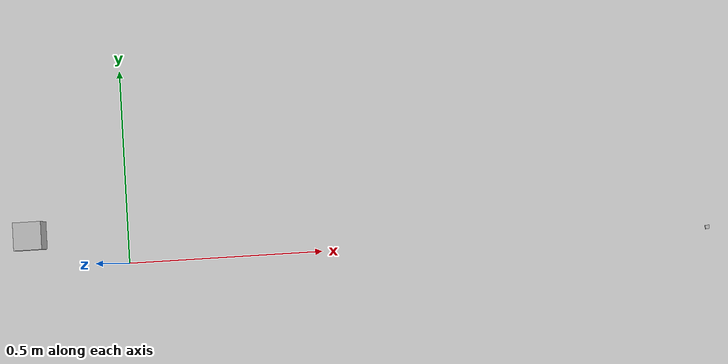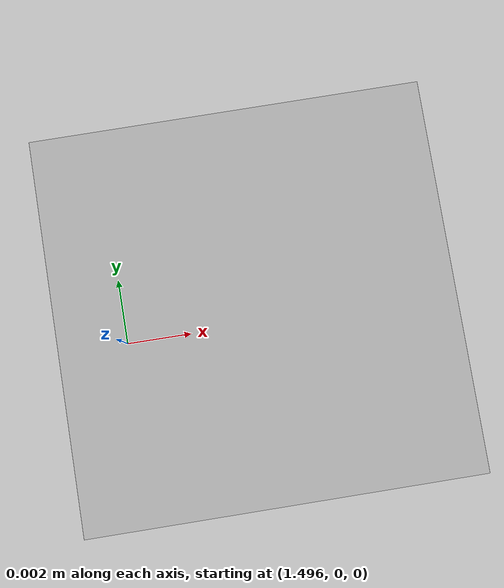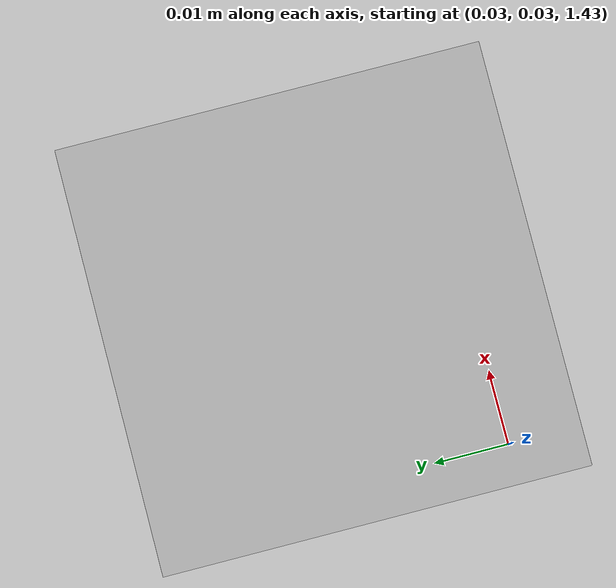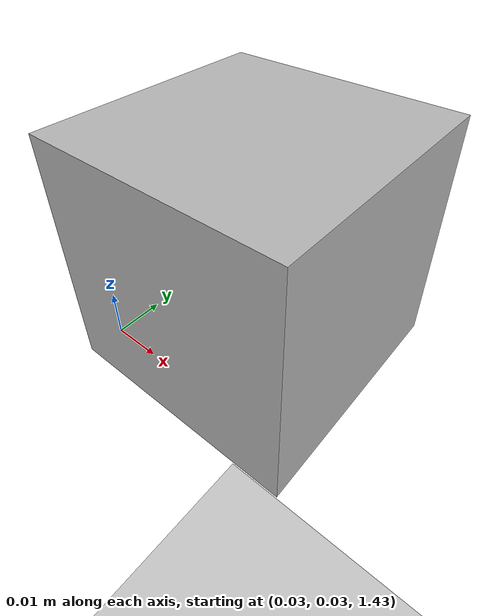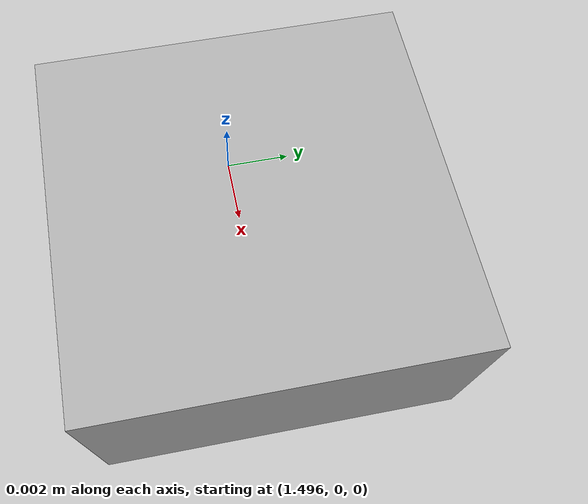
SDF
<sdf version='1.10'>
  <world name='empty'>
    <physics name='1ms' type='ignored'>
      <max_step_size>0.001</max_step_size>
      <real_time_factor>1</real_time_factor>
      <real_time_update_rate>1000</real_time_update_rate>
    </physics>
    <plugin name='gz::sim::systems::Physics' filename='gz-sim-physics-system'/>
    <plugin name='gz::sim::systems::UserCommands' filename='gz-sim-user-commands-system'/>
    <plugin name='gz::sim::systems::SceneBroadcaster' filename='gz-sim-scene-broadcaster-system'/>
    <plugin name='gz::sim::systems::Contact' filename='gz-sim-contact-system'/>
    <gravity>0 0 -9.8000000000000007</gravity>
    <magnetic_field>5.5644999999999998e-06 2.2875799999999999e-05 -4.2388400000000002e-05</magnetic_field>
    <atmosphere type='adiabatic'/>
    <scene>
      <ambient>0.400000006 0.400000006 0.400000006 1</ambient>
      <background>0.699999988 0.699999988 0.699999988 1</background>
      <shadows>true</shadows>
    </scene>
    <model name='ground_plane'>
      <static>true</static>
      <link name='link'>
        <collision name='collision'>
          <geometry>
            <plane>
              <normal>0 0 1</normal>
              <size>100 100</size>
            </plane>
          </geometry>
          <surface>
            <friction>
              <ode/>
            </friction>
            <bounce/>
            <contact/>
          </surface>
        </collision>
        <visual name='visual'>
          <geometry>
            <plane>
              <normal>0 0 1</normal>
              <size>100 100</size>
            </plane>
          </geometry>
          <material>
            <ambient>0.800000012 0.800000012 0.800000012 1</ambient>
            <diffuse>0.800000012 0.800000012 0.800000012 1</diffuse>
            <specular>0.800000012 0.800000012 0.800000012 1</specular>
          </material>
        </visual>
        <pose>0 0 0 0 0 0</pose>
        <inertial>
          <pose>0 0 0 0 0 0</pose>
          <mass>1</mass>
          <inertia>
            <ixx>1</ixx>
            <ixy>0</ixy>
            <ixz>0</ixz>
            <iyy>1</iyy>
            <iyz>0</iyz>
            <izz>1</izz>
          </inertia>
        </inertial>
        <enable_wind>false</enable_wind>
      </link>
      <pose>0 0 0 0 0 0</pose>
      <self_collide>false</self_collide>
    </model>
    <light name='sun' type='directional'>
      <pose>0 0 5 0 0 0</pose>
      <cast_shadows>true</cast_shadows>
      <intensity>1</intensity>
      <direction>-0.5 0.10000000000000001 -0.90000000000000002</direction>
      <diffuse>0.800000012 0.800000012 0.800000012 1</diffuse>
      <specular>0.200000003 0.200000003 0.200000003 1</specular>
      <attenuation>
        <range>1000</range>
        <linear>0.01</linear>
        <constant>0.90000000000000002</constant>
        <quadratic>0.001</quadratic>
      </attenuation>
      <spot>
        <inner_angle>0</inner_angle>
        <outer_angle>0</outer_angle>
        <falloff>0</falloff>
      </spot>
    </light>

    <model name="camera">
      <static>true</static>
      <pose>0 0 1.5 0 1.57 0</pose>
      <link name="link">
        <pose>0.05 0.05 0.05 0 0 0</pose>
        <inertial>
          <mass>0.1</mass>
          <inertia>
            <ixx>0.000166667</ixx>
            <iyy>0.000166667</iyy>
            <izz>0.000166667</izz>
          </inertia>
        </inertial>
        <collision name="collision">
          <geometry>
            <box>
              <size>0.05 0.05 0.05</size>
            </box>
          </geometry>
        </collision>
        <visual name="visual">
          <geometry>
            <box>
              <size>0.05 0.05 0.05</size>
            </box>
          </geometry>
        </visual>
      </link>
    </model>

    <model name="box">
       <static>false</static>
      <pose>1.5 0 0 0 0 0</pose>
      <link name="link">
        <pose>0 0 0 0 0 0</pose>
        <inertial>
          <mass>0.1</mass>
          <inertia>
            <ixx>0.000166667</ixx>
            <iyy>0.000166667</iyy>
            <izz>0.000166667</izz>
          </inertia>
        </inertial>
        <collision name="collision">
          <geometry>
            <box>
              <size>0.01 0.01 0.01</size>
            </box>
          </geometry>
        </collision>
        <visual name="visual">
          <geometry>
            <box>
              <size>0.01 0.01 0.01</size>
            </box>
          </geometry>
        </visual>
      </link>
    </model>
  </world>

</sdf>
